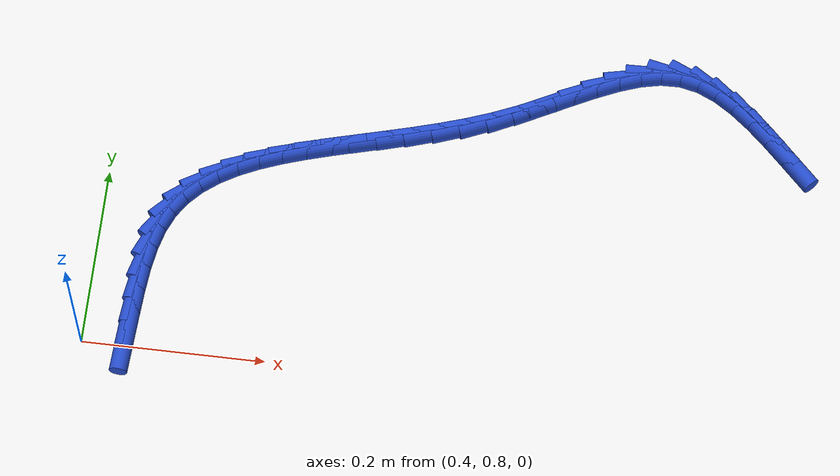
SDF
<sdf version="1.6">
 <world name="default">
  <model name="ground_plane">
   <static>1</static>
   <link name="link">
    <collision name="collision">
     <geometry><plane><normal>0 0 1</normal><size>100 100</size></plane></geometry>
     <surface><friction><ode><mu>100</mu><mu2>50</mu2></ode></friction></surface>
    </collision>
    <visual name="visual">
     <cast_shadows>0</cast_shadows>
     <geometry><plane><normal>0 0 1</normal><size>100 100</size></plane></geometry>
     <material>
      <script><uri>file://media/materials/scripts/gazebo.material</uri><name>Gazebo/WhiteGlow</name></script>
     </material>
    </visual>
   </link>
  </model>
  <model name="line">
   <link name="link_36">
    <pose>0.44759083306457664 0.8067382794637729 0.01 0 1.57 1.5193349013094481</pose>
    <collision name="collision">
     <geometry><cylinder><radius>0.01</radius><length>0.08</length></cylinder></geometry>
    </collision>
    <visual name="visual">
     <material>
      <script><name>Gazebo/Blue</name><uri>file://media/materials/scripts/gazebo.material</uri></script>
     </material>
     <geometry><cylinder><radius>0.01</radius><length>0.08</length></cylinder></geometry>
    </visual>
   </link>
   <link name="link_37">
    <pose>0.4490425217911388 0.8349226329800091 0.01 0 1.57 1.5120506157369022</pose>
    <collision name="collision">
     <geometry><cylinder><radius>0.01</radius><length>0.08</length></cylinder></geometry>
    </collision>
    <visual name="visual">
     <material>
      <script><name>Gazebo/Blue</name><uri>file://media/materials/scripts/gazebo.material</uri></script>
     </material>
     <geometry><cylinder><radius>0.01</radius><length>0.08</length></cylinder></geometry>
    </visual>
   </link>
   <link name="link_38">
    <pose>0.450668157666268 0.8625632106601149 0.01 0 1.57 1.4785912096408516</pose>
    <collision name="collision">
     <geometry><cylinder><radius>0.01</radius><length>0.08</length></cylinder></geometry>
    </collision>
    <visual name="visual">
     <material>
      <script><name>Gazebo/Blue</name><uri>file://media/materials/scripts/gazebo.material</uri></script>
     </material>
     <geometry><cylinder><radius>0.01</radius><length>0.08</length></cylinder></geometry>
    </visual>
   </link>
   <link name="link_39">
    <pose>0.4531318135598506 0.8892067439681415 0.01 0 1.57 1.414664179030179</pose>
    <collision name="collision">
     <geometry><cylinder><radius>0.01</radius><length>0.08</length></cylinder></geometry>
    </collision>
    <visual name="visual">
     <material>
      <script><name>Gazebo/Blue</name><uri>file://media/materials/scripts/gazebo.material</uri></script>
     </material>
     <geometry><cylinder><radius>0.01</radius><length>0.08</length></cylinder></geometry>
    </visual>
   </link>
   <link name="link_40">
    <pose>0.45709756234177396 0.9143999643681415 0.01 0 1.57 1.3133496488750067</pose>
    <collision name="collision">
     <geometry><cylinder><radius>0.01</radius><length>0.08</length></cylinder></geometry>
    </collision>
    <visual name="visual">
     <material>
      <script><name>Gazebo/Blue</name><uri>file://media/materials/scripts/gazebo.material</uri></script>
     </material>
     <geometry><cylinder><radius>0.01</radius><length>0.08</length></cylinder></geometry>
    </visual>
   </link>
   <link name="link_41">
    <pose>0.46322947688192406 0.937689603324166 0.01 0 1.57 1.1663318433616883</pose>
    <collision name="collision">
     <geometry><cylinder><radius>0.01</radius><length>0.08</length></cylinder></geometry>
    </collision>
    <visual name="visual">
     <material>
      <script><name>Gazebo/Blue</name><uri>file://media/materials/scripts/gazebo.material</uri></script>
     </material>
     <geometry><cylinder><radius>0.01</radius><length>0.08</length></cylinder></geometry>
    </visual>
   </link>
   <link name="link_42">
    <pose>0.4721904749100256 0.9586232995167805 0.01 0 1.57 0.9841497294428114</pose>
    <collision name="collision">
     <geometry><cylinder><radius>0.01</radius><length>0.08</length></cylinder></geometry>
    </collision>
    <visual name="visual">
     <material>
      <script><name>Gazebo/Blue</name><uri>file://media/materials/scripts/gazebo.material</uri></script>
     </material>
     <geometry><cylinder><radius>0.01</radius><length>0.08</length></cylinder></geometry>
    </visual>
   </link>
   <link name="link_43">
    <pose>0.48437746749637645 0.976957606216957 0.01 0 1.57 0.8097848974648232</pose>
    <collision name="collision">
     <geometry><cylinder><radius>0.01</radius><length>0.08</length></cylinder></geometry>
    </collision>
    <visual name="visual">
     <material>
      <script><name>Gazebo/Blue</name><uri>file://media/materials/scripts/gazebo.material</uri></script>
     </material>
     <geometry><cylinder><radius>0.01</radius><length>0.08</length></cylinder></geometry>
    </visual>
   </link>
   <link name="link_44">
    <pose>0.4995831481050269 0.9929236132129062 0.01 0 1.57 0.6591628789713916</pose>
    <collision name="collision">
     <geometry><cylinder><radius>0.01</radius><length>0.08</length></cylinder></geometry>
    </collision>
    <visual name="visual">
     <material>
      <script><name>Gazebo/Blue</name><uri>file://media/materials/scripts/gazebo.material</uri></script>
     </material>
     <geometry><cylinder><radius>0.01</radius><length>0.08</length></cylinder></geometry>
    </visual>
   </link>
   <link name="link_45">
    <pose>0.5175167677088187 1.0068179438171176 0.01 0 1.57 0.5366858220154567</pose>
    <collision name="collision">
     <geometry><cylinder><radius>0.01</radius><length>0.08</length></cylinder></geometry>
    </collision>
    <visual name="visual">
     <material>
      <script><name>Gazebo/Blue</name><uri>file://media/materials/scripts/gazebo.material</uri></script>
     </material>
     <geometry><cylinder><radius>0.01</radius><length>0.08</length></cylinder></geometry>
    </visual>
   </link>
   <link name="link_46">
    <pose>0.5378875772805929 1.0189372213420802 0.01 0 1.57 0.44145911355571316</pose>
    <collision name="collision">
     <geometry><cylinder><radius>0.01</radius><length>0.08</length></cylinder></geometry>
    </collision>
    <visual name="visual">
     <material>
      <script><name>Gazebo/Blue</name><uri>file://media/materials/scripts/gazebo.material</uri></script>
     </material>
     <geometry><cylinder><radius>0.01</radius><length>0.08</length></cylinder></geometry>
    </visual>
   </link>
   <link name="link_47">
    <pose>0.560404827793191 1.029578069100282 0.01 0 1.57 0.3702023694781553</pose>
    <collision name="collision">
     <geometry><cylinder><radius>0.01</radius><length>0.08</length></cylinder></geometry>
    </collision>
    <visual name="visual">
     <material>
      <script><name>Gazebo/Blue</name><uri>file://media/materials/scripts/gazebo.material</uri></script>
     </material>
     <geometry><cylinder><radius>0.01</radius><length>0.08</length></cylinder></geometry>
    </visual>
   </link>
   <link name="link_48">
    <pose>0.5847777702194545 1.039037110404213 0.01 0 1.57 0.3192466002488659</pose>
    <collision name="collision">
     <geometry><cylinder><radius>0.01</radius><length>0.08</length></cylinder></geometry>
    </collision>
    <visual name="visual">
     <material>
      <script><name>Gazebo/Blue</name><uri>file://media/materials/scripts/gazebo.material</uri></script>
     </material>
     <geometry><cylinder><radius>0.01</radius><length>0.08</length></cylinder></geometry>
    </visual>
   </link>
   <link name="link_49">
    <pose>0.6107156555322247 1.0476109685663624 0.01 0 1.57 0.285433920319902</pose>
    <collision name="collision">
     <geometry><cylinder><radius>0.01</radius><length>0.08</length></cylinder></geometry>
    </collision>
    <visual name="visual">
     <material>
      <script><name>Gazebo/Blue</name><uri>file://media/materials/scripts/gazebo.material</uri></script>
     </material>
     <geometry><cylinder><radius>0.01</radius><length>0.08</length></cylinder></geometry>
    </visual>
   </link>
   <link name="link_50">
    <pose>0.6379277347043428 1.0555962668992183 0.01 0 1.57 0.26637331032321054</pose>
    <collision name="collision">
     <geometry><cylinder><radius>0.01</radius><length>0.08</length></cylinder></geometry>
    </collision>
    <visual name="visual">
     <material>
      <script><name>Gazebo/Blue</name><uri>file://media/materials/scripts/gazebo.material</uri></script>
     </material>
     <geometry><cylinder><radius>0.01</radius><length>0.08</length></cylinder></geometry>
    </visual>
   </link>
   <link name="link_51">
    <pose>0.6661232587086502 1.0632896287152702 0.01 0 1.57 0.26042538826020223</pose>
    <collision name="collision">
     <geometry><cylinder><radius>0.01</radius><length>0.08</length></cylinder></geometry>
    </collision>
    <visual name="visual">
     <material>
      <script><name>Gazebo/Blue</name><uri>file://media/materials/scripts/gazebo.material</uri></script>
     </material>
     <geometry><cylinder><radius>0.01</radius><length>0.08</length></cylinder></geometry>
    </visual>
   </link>
   <link name="link_52">
    <pose>0.6950114785179885 1.0709876773270068 0.01 0 1.57 0.266605745631477</pose>
    <collision name="collision">
     <geometry><cylinder><radius>0.01</radius><length>0.08</length></cylinder></geometry>
    </collision>
    <visual name="visual">
     <material>
      <script><name>Gazebo/Blue</name><uri>file://media/materials/scripts/gazebo.material</uri></script>
     </material>
     <geometry><cylinder><radius>0.01</radius><length>0.08</length></cylinder></geometry>
    </visual>
   </link>
   <link name="link_53">
    <pose>0.7243016451051989 1.0789870360469176 0.01 0 1.57 0.28448025632831053</pose>
    <collision name="collision">
     <geometry><cylinder><radius>0.01</radius><length>0.08</length></cylinder></geometry>
    </collision>
    <visual name="visual">
     <material>
      <script><name>Gazebo/Blue</name><uri>file://media/materials/scripts/gazebo.material</uri></script>
     </material>
     <geometry><cylinder><radius>0.01</radius><length>0.08</length></cylinder></geometry>
    </visual>
   </link>
   <link name="link_54">
    <pose>0.7537030094431226 1.0875843281874908 0.01 0 1.57 0.31406969195523887</pose>
    <collision name="collision">
     <geometry><cylinder><radius>0.01</radius><length>0.08</length></cylinder></geometry>
    </collision>
    <visual name="visual">
     <material>
      <script><name>Gazebo/Blue</name><uri>file://media/materials/scripts/gazebo.material</uri></script>
     </material>
     <geometry><cylinder><radius>0.01</radius><length>0.08</length></cylinder></geometry>
    </visual>
   </link>
   <link name="link_55">
    <pose>0.7829248225046013 1.097076177061216 0.01 0 1.57 0.35575494510192446</pose>
    <collision name="collision">
     <geometry><cylinder><radius>0.01</radius><length>0.08</length></cylinder></geometry>
    </collision>
    <visual name="visual">
     <material>
      <script><name>Gazebo/Blue</name><uri>file://media/materials/scripts/gazebo.material</uri></script>
     </material>
     <geometry><cylinder><radius>0.01</radius><length>0.08</length></cylinder></geometry>
    </visual>
   </link>
   <link name="link_56">
    <pose>0.8116763352624761 1.107759205980582 0.01 0 1.57 0.40938998920742864</pose>
    <collision name="collision">
     <geometry><cylinder><radius>0.01</radius><length>0.08</length></cylinder></geometry>
    </collision>
    <visual name="visual">
     <material>
      <script><name>Gazebo/Blue</name><uri>file://media/materials/scripts/gazebo.material</uri></script>
     </material>
     <geometry><cylinder><radius>0.01</radius><length>0.08</length></cylinder></geometry>
    </visual>
   </link>
   <link name="link_57">
    <pose>0.8396728514470233 1.1199070665959758 0.01 0 1.57 0.4562645309256227</pose>
    <collision name="collision">
     <geometry><cylinder><radius>0.01</radius><length>0.08</length></cylinder></geometry>
    </collision>
    <visual name="visual">
     <material>
      <script><name>Gazebo/Blue</name><uri>file://media/materials/scripts/gazebo.material</uri></script>
     </material>
     <geometry><cylinder><radius>0.01</radius><length>0.08</length></cylinder></geometry>
    </visual>
   </link>
   <link name="link_58">
    <pose>0.8667826835239762 1.133212705811675 0.01 0 1.57 0.47632569828253873</pose>
    <collision name="collision">
     <geometry><cylinder><radius>0.01</radius><length>0.08</length></cylinder></geometry>
    </collision>
    <visual name="visual">
     <material>
      <script><name>Gazebo/Blue</name><uri>file://media/materials/scripts/gazebo.material</uri></script>
     </material>
     <geometry><cylinder><radius>0.01</radius><length>0.08</length></cylinder></geometry>
    </visual>
   </link>
   <link name="link_59">
    <pose>0.8930352333797654 1.1467576976527027 0.01 0 1.57 0.4674352019873801</pose>
    <collision name="collision">
     <geometry><cylinder><radius>0.01</radius><length>0.08</length></cylinder></geometry>
    </collision>
    <visual name="visual">
     <material>
      <script><name>Gazebo/Blue</name><uri>file://media/materials/scripts/gazebo.material</uri></script>
     </material>
     <geometry><cylinder><radius>0.01</radius><length>0.08</length></cylinder></geometry>
    </visual>
   </link>
   <link name="link_60">
    <pose>0.9184675731372824 1.1595945057622288 0.01 0 1.57 0.4258507213149521</pose>
    <collision name="collision">
     <geometry><cylinder><radius>0.01</radius><length>0.08</length></cylinder></geometry>
    </collision>
    <visual name="visual">
     <material>
      <script><name>Gazebo/Blue</name><uri>file://media/materials/scripts/gazebo.material</uri></script>
     </material>
     <geometry><cylinder><radius>0.01</radius><length>0.08</length></cylinder></geometry>
    </visual>
   </link>
   <link name="link_61">
    <pose>0.9431167749194173 1.1707755937834228 0.01 0 1.57 0.34454423634567055</pose>
    <collision name="collision">
     <geometry><cylinder><radius>0.01</radius><length>0.08</length></cylinder></geometry>
    </collision>
    <visual name="visual">
     <material>
      <script><name>Gazebo/Blue</name><uri>file://media/materials/scripts/gazebo.material</uri></script>
     </material>
     <geometry><cylinder><radius>0.01</radius><length>0.08</length></cylinder></geometry>
    </visual>
   </link>
   <link name="link_62">
    <pose>0.9670199108490608 1.179353425359454 0.01 0 1.57 0.21343623160899192</pose>
    <collision name="collision">
     <geometry><cylinder><radius>0.01</radius><length>0.08</length></cylinder></geometry>
    </collision>
    <visual name="visual">
     <material>
      <script><name>Gazebo/Blue</name><uri>file://media/materials/scripts/gazebo.material</uri></script>
     </material>
     <geometry><cylinder><radius>0.01</radius><length>0.08</length></cylinder></geometry>
    </visual>
   </link>
   <link name="link_63">
    <pose>0.9902140530491045 1.1843804641334919 0.01 0 1.57 0.023470710860181494</pose>
    <collision name="collision">
     <geometry><cylinder><radius>0.01</radius><length>0.08</length></cylinder></geometry>
    </collision>
    <visual name="visual">
     <material>
      <script><name>Gazebo/Blue</name><uri>file://media/materials/scripts/gazebo.material</uri></script>
     </material>
     <geometry><cylinder><radius>0.01</radius><length>0.08</length></cylinder></geometry>
    </visual>
   </link>
   <link name="link_64">
    <pose>1.012736273642439 1.184909173748707 0.01 0 1.57 -0.21345648533254488</pose>
    <collision name="collision">
     <geometry><cylinder><radius>0.01</radius><length>0.08</length></cylinder></geometry>
    </collision>
    <visual name="visual">
     <material>
      <script><name>Gazebo/Blue</name><uri>file://media/materials/scripts/gazebo.material</uri></script>
     </material>
     <geometry><cylinder><radius>0.01</radius><length>0.08</length></cylinder></geometry>
    </visual>
   </link>
   <link name="link_65">
    <pose>1.034632316392361 1.1801630174027262 0.01 0 1.57 -0.4232969018457366</pose>
    <collision name="collision">
     <geometry><cylinder><radius>0.01</radius><length>0.08</length></cylinder></geometry>
    </collision>
    <visual name="visual">
     <material>
      <script><name>Gazebo/Blue</name><uri>file://media/materials/scripts/gazebo.material</uri></script>
     </material>
     <geometry><cylinder><radius>0.01</radius><length>0.08</length></cylinder></geometry>
    </visual>
   </link>
   <link name="link_66">
    <pose>1.056007130937334 1.1705329626868761 0.01 0 1.57 -0.5762417381620799</pose>
    <collision name="collision">
     <geometry><cylinder><radius>0.01</radius><length>0.08</length></cylinder></geometry>
    </collision>
    <visual name="visual">
     <material>
      <script><name>Gazebo/Blue</name><uri>file://media/materials/scripts/gazebo.material</uri></script>
     </material>
     <geometry><cylinder><radius>0.01</radius><length>0.08</length></cylinder></geometry>
    </visual>
   </link>
   <link name="link_67">
    <pose>1.0769904060351025 1.1568978178058498 0.01 0 1.57 -0.680090681509359</pose>
    <collision name="collision">
     <geometry><cylinder><radius>0.01</radius><length>0.08</length></cylinder></geometry>
    </collision>
    <visual name="visual">
     <material>
      <script><name>Gazebo/Blue</name><uri>file://media/materials/scripts/gazebo.material</uri></script>
     </material>
     <geometry><cylinder><radius>0.01</radius><length>0.08</length></cylinder></geometry>
    </visual>
   </link>
   <link name="link_68">
    <pose>1.0977119134137796 1.1401380270903283 0.01 0 1.57 -0.7453746159096243</pose>
    <collision name="collision">
     <geometry><cylinder><radius>0.01</radius><length>0.08</length></cylinder></geometry>
    </collision>
    <visual name="visual">
     <material>
      <script><name>Gazebo/Blue</name><uri>file://media/materials/scripts/gazebo.material</uri></script>
     </material>
     <geometry><cylinder><radius>0.01</radius><length>0.08</length></cylinder></geometry>
    </visual>
   </link>
   <link name="link_69">
    <pose>1.1183014248014795 1.1211340348709946 0.01 0 1.57 -0.7800377572470345</pose>
    <collision name="collision">
     <geometry><cylinder><radius>0.01</radius><length>0.08</length></cylinder></geometry>
    </collision>
    <visual name="visual">
     <material>
      <script><name>Gazebo/Blue</name><uri>file://media/materials/scripts/gazebo.material</uri></script>
     </material>
     <geometry><cylinder><radius>0.01</radius><length>0.08</length></cylinder></geometry>
    </visual>
   </link>
   <link name="link_70">
    <pose>1.1388887119263147 1.1007662854785303 0.01 0 1.57 -0.7886755414281048</pose>
    <collision name="collision">
     <geometry><cylinder><radius>0.01</radius><length>0.08</length></cylinder></geometry>
    </collision>
    <visual name="visual">
     <material>
      <script><name>Gazebo/Blue</name><uri>file://media/materials/scripts/gazebo.material</uri></script>
     </material>
     <geometry><cylinder><radius>0.01</radius><length>0.08</length></cylinder></geometry>
    </visual>
   </link>
  </model>
 </world>
</sdf>
